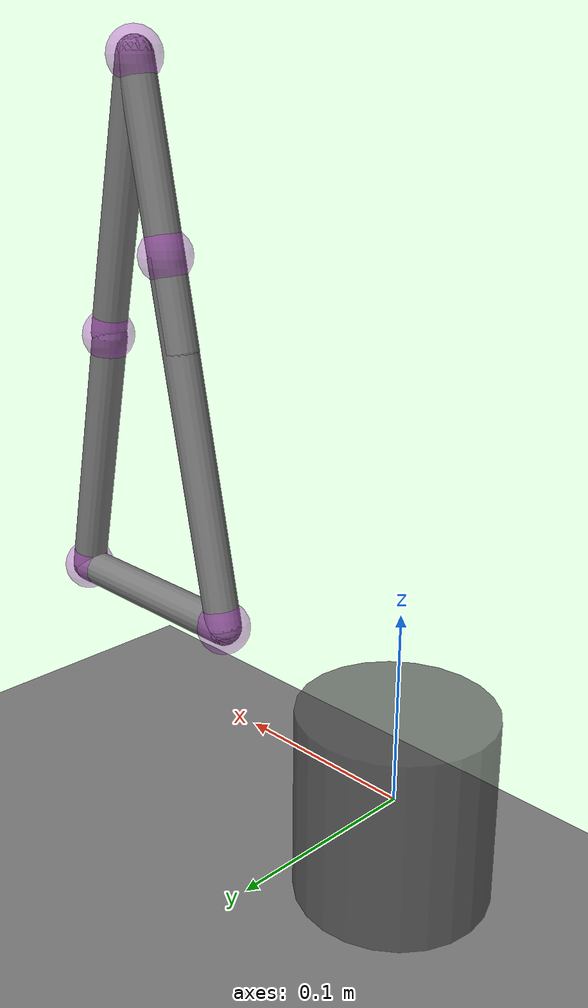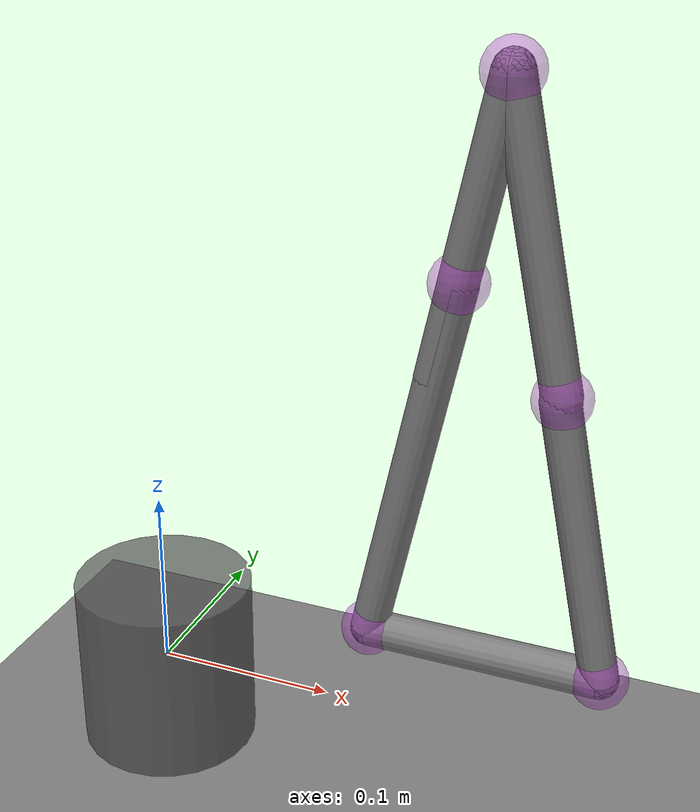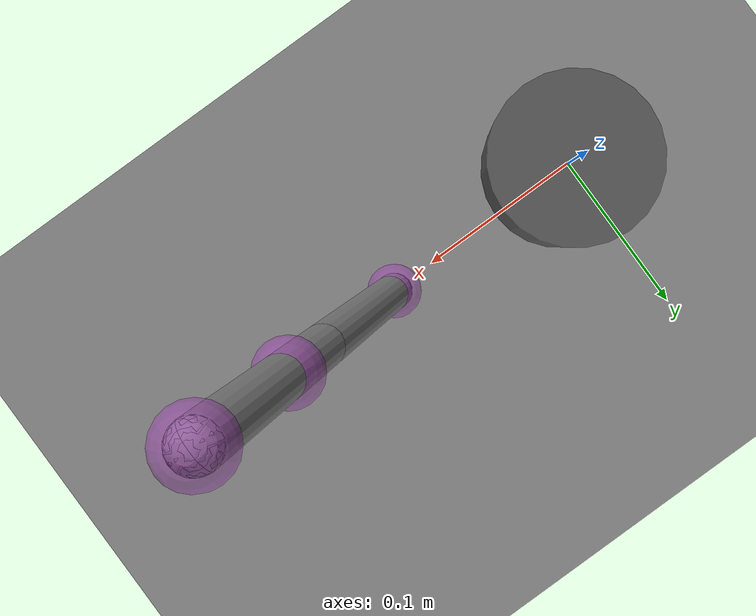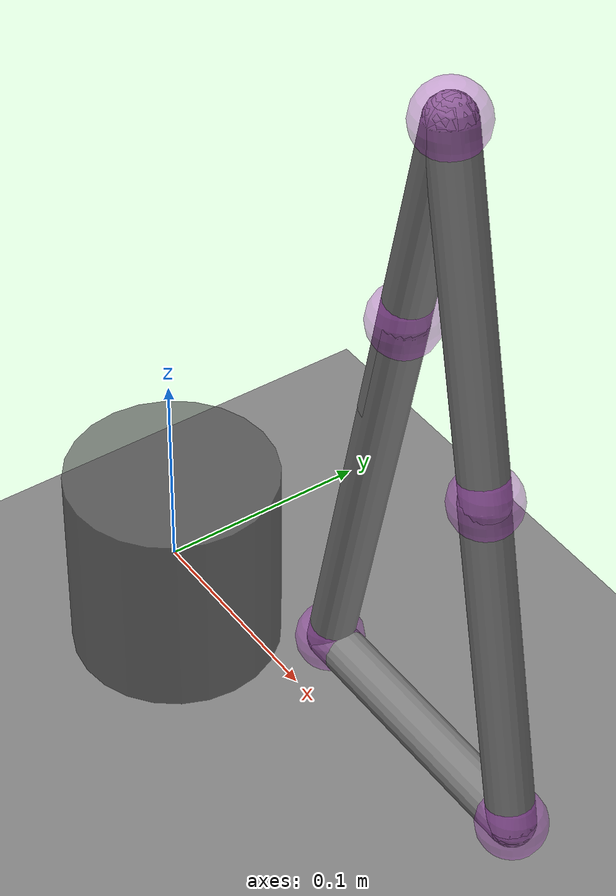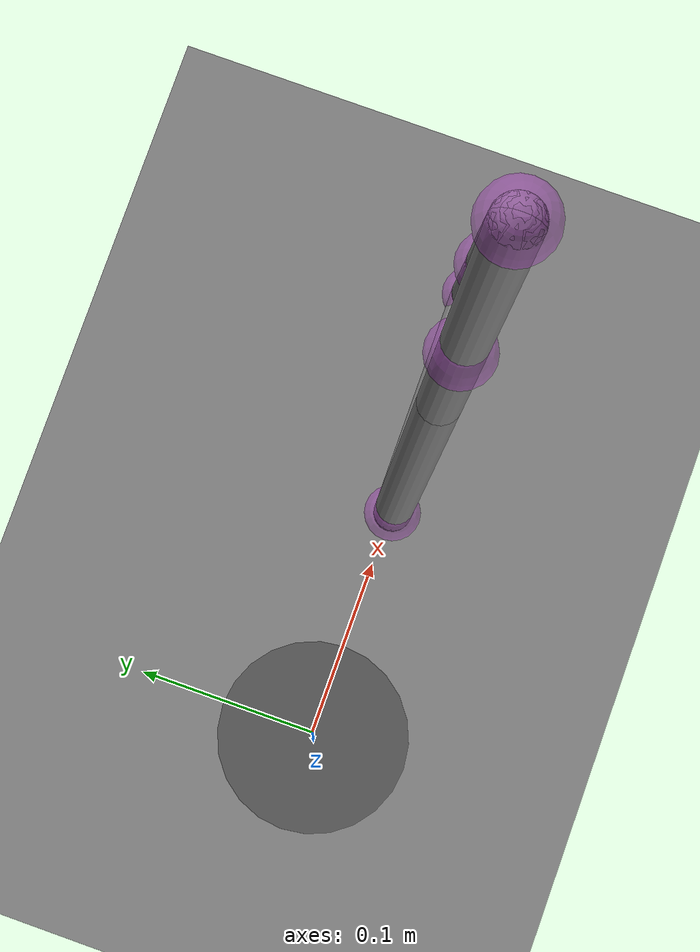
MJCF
<mujoco>

    <option timestep="1e-4"/>
    <option gravity="0 0 -9.8"/>

    <default>

        <joint axis="1 0 0"/>

    </default>

    <worldbody>
        <light pos="0 0 10"/>

        <geom type="plane"  pos="0 0 -0.1" size="30 30 .01" />

        <body name="base" pos="0 0 0">
            <geom type="cylinder" size="0.05 0.05" rgba="0.3 0.3 0.3 0.7" />

            <body name="A_r" pos="0 0 0">
                <geom name="AB" fromto="0.125 0 .05 0.25 0 0.05" type="capsule" size="0.01 0.08"/>
                <geom name="A" type="sphere" size="0.015" pos="0.125 0 0.05"  rgba="0.7 0.2 0.8 0.4"/>

                <joint name="A" pos="0.125 0 0.05" type="hinge" axis="0 1 0" stiffness="0" springref="0" damping="0"/>
                <body pos="0 0 0">
                    <geom name="B" type="sphere" size="0.015" pos="0.25 0 0.05" rgba="0.7 0.2 0.8 0.4"/>
                    <joint name="B" pos="0.25 0 0.05" type="hinge" axis="0 1 0" stiffness="0" springref="0" damping="0"/>
                    <joint name="B2" pos="0.25 0 0.05" type="hinge" axis="0 1 0" stiffness="0" springref="0" damping="0"/>

                    <geom name="Bc" fromto="0.25 0 0.05 0.21875 0 0.2" type="capsule" size="0.01"/>
                    <body pos="0 0 0">
                        <geom name="C" type="sphere" size="0.015" pos="0.22 0 0.2"  rgba="0.7 0.2 0.8 0.4"/>
                        <site name="C" size="0.001" pos="0.22 0 0.2"/>

                        <geom name="CD" fromto="0.22 0 0.2 0.1875 0 0.35" type="capsule" size="0.01"/>
                        <joint name="C" pos="0.22 0 0.2" type="hinge" axis="0 1 0" stiffness="0" springref="0" damping="0"/>
                        <body pos="0 0 0">
                            <geom name="D" type="sphere" size="0.015" pos="0.1875 0 0.35"  rgba="0.7 0.2 0.8 0.4"/>
                            <site name="D" size="0.001" pos="0.1875 0 0.35"/>

                            <joint name="D" pos="0.1875 0 0.35" type="hinge" axis="0 1 0" stiffness="0" springref="0" damping="0"/>
                        </body>
                    </body>
                </body>
            </body>

            <body name="A_l" pos="0 0 0" >

                <joint name="A2" pos="0.125 0 0.05" type="hinge" axis="0 1 0" stiffness="0" springref="0" damping="0"/>

                <geom name="F" type="sphere" size="0.015" pos="0.167 0 0.25" rgba="0.7 0.2 0.8 0.4"/>
                <geom name="AF" fromto="0.125 0 .05 0.167 0 0.25" type="capsule" size="0.01"/>
                <site name="C1" size="0.001" pos="0.22 0 0.2"/>

                <body pos="0 0 0 ">
                    <geom name="FE" fromto="0.15625 0 0.2 0.1875 0 0.35" type="capsule" size="0.01"/>
                    <site name="E" size="0.001" pos="0.1875 0 0.35"/>

                </body>
            </body>

        </body>

    </worldbody>

    <equality>
        <connect site1="D" site2="E"/>

    </equality>

    <actuator>
        <general name="motor" gear="1" joint="A"/>
    </actuator>

</mujoco>
